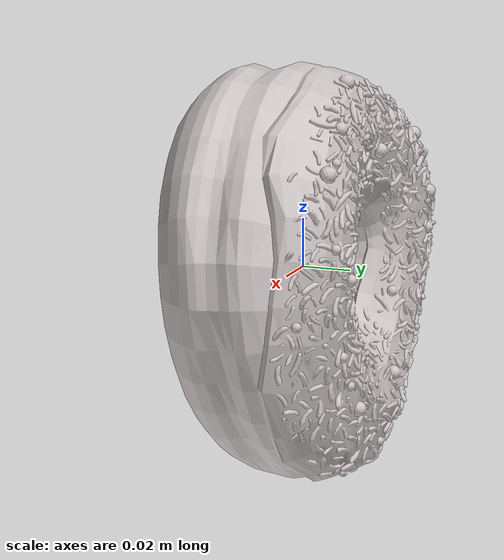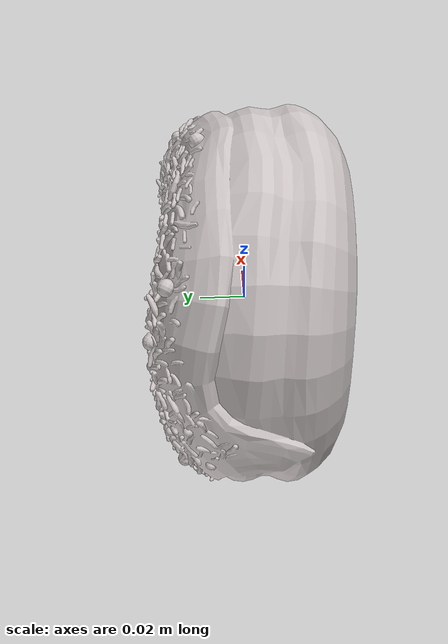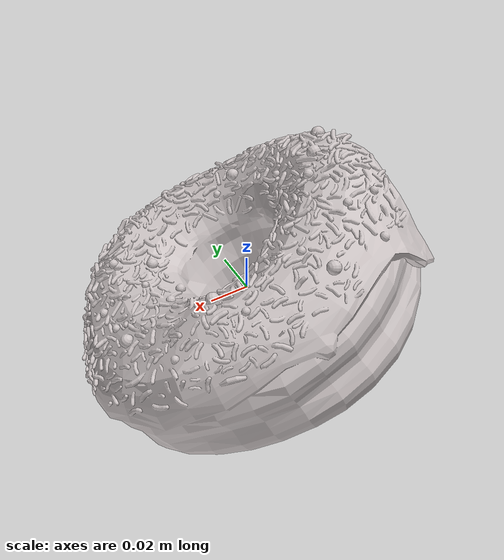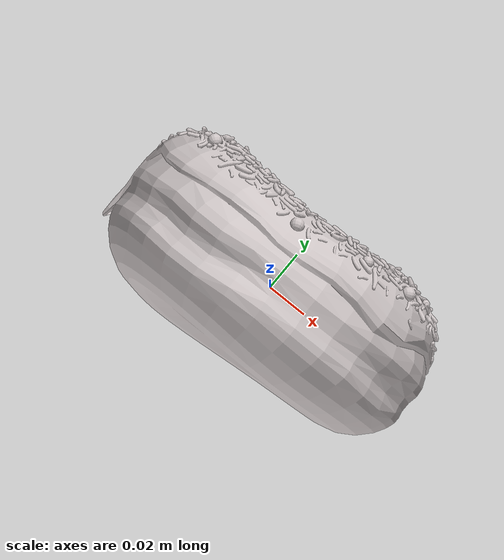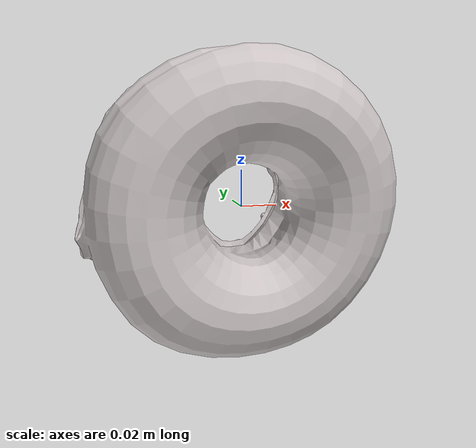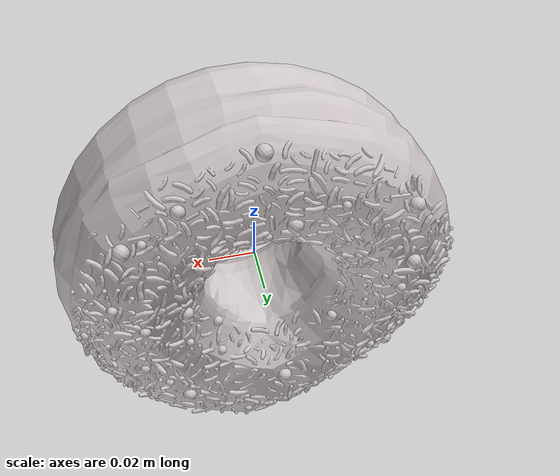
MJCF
<mujoco model="fork_5">
  <asset>
    <mesh file="visual/model_normalized_0.obj" name="model_normalized_0_vis" scale="0.16999999999999998 0.16999999999999998 0.16999999999999998" refquat="0.7071067811865471 0.7071067811865471 0.0 0.0"/>
    <mesh file="collision/model_normalized_collision_22.obj" name="model_normalized_collision_22._coll" scale="0.16999999999999998 0.16999999999999998 0.16999999999999998" refquat="0.7071067811865471 0.7071067811865471 0.0 0.0"/>
    <mesh file="collision/model_normalized_collision_23.obj" name="model_normalized_collision_23._coll" scale="0.16999999999999998 0.16999999999999998 0.16999999999999998" refquat="0.7071067811865471 0.7071067811865471 0.0 0.0"/>
    <mesh file="collision/model_normalized_collision_21.obj" name="model_normalized_collision_21._coll" scale="0.16999999999999998 0.16999999999999998 0.16999999999999998" refquat="0.7071067811865471 0.7071067811865471 0.0 0.0"/>
    <mesh file="collision/model_normalized_collision_20.obj" name="model_normalized_collision_20._coll" scale="0.16999999999999998 0.16999999999999998 0.16999999999999998" refquat="0.7071067811865471 0.7071067811865471 0.0 0.0"/>
    <mesh file="collision/model_normalized_collision_24.obj" name="model_normalized_collision_24._coll" scale="0.16999999999999998 0.16999999999999998 0.16999999999999998" refquat="0.7071067811865471 0.7071067811865471 0.0 0.0"/>
    <mesh file="collision/model_normalized_collision_30.obj" name="model_normalized_collision_30._coll" scale="0.16999999999999998 0.16999999999999998 0.16999999999999998" refquat="0.7071067811865471 0.7071067811865471 0.0 0.0"/>
    <mesh file="collision/model_normalized_collision_18.obj" name="model_normalized_collision_18._coll" scale="0.16999999999999998 0.16999999999999998 0.16999999999999998" refquat="0.7071067811865471 0.7071067811865471 0.0 0.0"/>
    <mesh file="collision/model_normalized_collision_19.obj" name="model_normalized_collision_19._coll" scale="0.16999999999999998 0.16999999999999998 0.16999999999999998" refquat="0.7071067811865471 0.7071067811865471 0.0 0.0"/>
    <mesh file="collision/model_normalized_collision_31.obj" name="model_normalized_collision_31._coll" scale="0.16999999999999998 0.16999999999999998 0.16999999999999998" refquat="0.7071067811865471 0.7071067811865471 0.0 0.0"/>
    <mesh file="collision/model_normalized_collision_25.obj" name="model_normalized_collision_25._coll" scale="0.16999999999999998 0.16999999999999998 0.16999999999999998" refquat="0.7071067811865471 0.7071067811865471 0.0 0.0"/>
    <mesh file="collision/model_normalized_collision_27.obj" name="model_normalized_collision_27._coll" scale="0.16999999999999998 0.16999999999999998 0.16999999999999998" refquat="0.7071067811865471 0.7071067811865471 0.0 0.0"/>
    <mesh file="collision/model_normalized_collision_26.obj" name="model_normalized_collision_26._coll" scale="0.16999999999999998 0.16999999999999998 0.16999999999999998" refquat="0.7071067811865471 0.7071067811865471 0.0 0.0"/>
    <mesh file="collision/model_normalized_collision_9.obj" name="model_normalized_collision_9._coll" scale="0.16999999999999998 0.16999999999999998 0.16999999999999998" refquat="0.7071067811865471 0.7071067811865471 0.0 0.0"/>
    <mesh file="collision/model_normalized_collision_8.obj" name="model_normalized_collision_8._coll" scale="0.16999999999999998 0.16999999999999998 0.16999999999999998" refquat="0.7071067811865471 0.7071067811865471 0.0 0.0"/>
    <mesh file="collision/model_normalized_collision_6.obj" name="model_normalized_collision_6._coll" scale="0.16999999999999998 0.16999999999999998 0.16999999999999998" refquat="0.7071067811865471 0.7071067811865471 0.0 0.0"/>
    <mesh file="collision/model_normalized_collision_7.obj" name="model_normalized_collision_7._coll" scale="0.16999999999999998 0.16999999999999998 0.16999999999999998" refquat="0.7071067811865471 0.7071067811865471 0.0 0.0"/>
    <mesh file="collision/model_normalized_collision_5.obj" name="model_normalized_collision_5._coll" scale="0.16999999999999998 0.16999999999999998 0.16999999999999998" refquat="0.7071067811865471 0.7071067811865471 0.0 0.0"/>
    <mesh file="collision/model_normalized_collision_4.obj" name="model_normalized_collision_4._coll" scale="0.16999999999999998 0.16999999999999998 0.16999999999999998" refquat="0.7071067811865471 0.7071067811865471 0.0 0.0"/>
    <mesh file="collision/model_normalized_collision_0.obj" name="model_normalized_collision_0._coll" scale="0.16999999999999998 0.16999999999999998 0.16999999999999998" refquat="0.7071067811865471 0.7071067811865471 0.0 0.0"/>
    <mesh file="collision/model_normalized_collision_1.obj" name="model_normalized_collision_1._coll" scale="0.16999999999999998 0.16999999999999998 0.16999999999999998" refquat="0.7071067811865471 0.7071067811865471 0.0 0.0"/>
    <mesh file="collision/model_normalized_collision_3.obj" name="model_normalized_collision_3._coll" scale="0.16999999999999998 0.16999999999999998 0.16999999999999998" refquat="0.7071067811865471 0.7071067811865471 0.0 0.0"/>
    <mesh file="collision/model_normalized_collision_2.obj" name="model_normalized_collision_2._coll" scale="0.16999999999999998 0.16999999999999998 0.16999999999999998" refquat="0.7071067811865471 0.7071067811865471 0.0 0.0"/>
    <mesh file="collision/model_normalized_collision_17.obj" name="model_normalized_collision_17._coll" scale="0.16999999999999998 0.16999999999999998 0.16999999999999998" refquat="0.7071067811865471 0.7071067811865471 0.0 0.0"/>
    <mesh file="collision/model_normalized_collision_16.obj" name="model_normalized_collision_16._coll" scale="0.16999999999999998 0.16999999999999998 0.16999999999999998" refquat="0.7071067811865471 0.7071067811865471 0.0 0.0"/>
    <mesh file="collision/model_normalized_collision_28.obj" name="model_normalized_collision_28._coll" scale="0.16999999999999998 0.16999999999999998 0.16999999999999998" refquat="0.7071067811865471 0.7071067811865471 0.0 0.0"/>
    <mesh file="collision/model_normalized_collision_14.obj" name="model_normalized_collision_14._coll" scale="0.16999999999999998 0.16999999999999998 0.16999999999999998" refquat="0.7071067811865471 0.7071067811865471 0.0 0.0"/>
    <mesh file="collision/model_normalized_collision_15.obj" name="model_normalized_collision_15._coll" scale="0.16999999999999998 0.16999999999999998 0.16999999999999998" refquat="0.7071067811865471 0.7071067811865471 0.0 0.0"/>
    <mesh file="collision/model_normalized_collision_29.obj" name="model_normalized_collision_29._coll" scale="0.16999999999999998 0.16999999999999998 0.16999999999999998" refquat="0.7071067811865471 0.7071067811865471 0.0 0.0"/>
    <mesh file="collision/model_normalized_collision_11.obj" name="model_normalized_collision_11._coll" scale="0.16999999999999998 0.16999999999999998 0.16999999999999998" refquat="0.7071067811865471 0.7071067811865471 0.0 0.0"/>
    <mesh file="collision/model_normalized_collision_10.obj" name="model_normalized_collision_10._coll" scale="0.16999999999999998 0.16999999999999998 0.16999999999999998" refquat="0.7071067811865471 0.7071067811865471 0.0 0.0"/>
    <mesh file="collision/model_normalized_collision_12.obj" name="model_normalized_collision_12._coll" scale="0.16999999999999998 0.16999999999999998 0.16999999999999998" refquat="0.7071067811865471 0.7071067811865471 0.0 0.0"/>
    <mesh file="collision/model_normalized_collision_13.obj" name="model_normalized_collision_13._coll" scale="0.16999999999999998 0.16999999999999998 0.16999999999999998" refquat="0.7071067811865471 0.7071067811865471 0.0 0.0"/>
    <material name="Scene_-_Root.011" specular="0.5" shininess="0.587641447" rgba="0.810370 0.778284 0.778284 1.0"/>
  </asset>
  <default>
    <default class="region">
      <geom group="1" conaffinity="0" contype="0" rgba="0 1 0 0"/>
    </default>
  </default>
  <worldbody>
    <body>
      <body name="object">
        <geom solimp="0.998 0.998 0.001" solref="0.001 1" density="100" friction="4.95 0.3 0.1" type="mesh" mesh="model_normalized_0_vis" conaffinity="0" contype="0" group="1" material="Scene_-_Root.011"/>
        <geom solimp="0.998 0.998 0.001" solref="0.001 1" density="100" friction="4.95 0.3 0.1" type="mesh" mesh="model_normalized_collision_22._coll" group="0" rgba="0.8 0.8 0.8 0.0"/>
        <geom solimp="0.998 0.998 0.001" solref="0.001 1" density="100" friction="4.95 0.3 0.1" type="mesh" mesh="model_normalized_collision_23._coll" group="0" rgba="0.8 0.8 0.8 0.0"/>
        <geom solimp="0.998 0.998 0.001" solref="0.001 1" density="100" friction="4.95 0.3 0.1" type="mesh" mesh="model_normalized_collision_21._coll" group="0" rgba="0.8 0.8 0.8 0.0"/>
        <geom solimp="0.998 0.998 0.001" solref="0.001 1" density="100" friction="4.95 0.3 0.1" type="mesh" mesh="model_normalized_collision_20._coll" group="0" rgba="0.8 0.8 0.8 0.0"/>
        <geom solimp="0.998 0.998 0.001" solref="0.001 1" density="100" friction="4.95 0.3 0.1" type="mesh" mesh="model_normalized_collision_24._coll" group="0" rgba="0.8 0.8 0.8 0.0"/>
        <geom solimp="0.998 0.998 0.001" solref="0.001 1" density="100" friction="4.95 0.3 0.1" type="mesh" mesh="model_normalized_collision_30._coll" group="0" rgba="0.8 0.8 0.8 0.0"/>
        <geom solimp="0.998 0.998 0.001" solref="0.001 1" density="100" friction="4.95 0.3 0.1" type="mesh" mesh="model_normalized_collision_18._coll" group="0" rgba="0.8 0.8 0.8 0.0"/>
        <geom solimp="0.998 0.998 0.001" solref="0.001 1" density="100" friction="4.95 0.3 0.1" type="mesh" mesh="model_normalized_collision_19._coll" group="0" rgba="0.8 0.8 0.8 0.0"/>
        <geom solimp="0.998 0.998 0.001" solref="0.001 1" density="100" friction="4.95 0.3 0.1" type="mesh" mesh="model_normalized_collision_31._coll" group="0" rgba="0.8 0.8 0.8 0.0"/>
        <geom solimp="0.998 0.998 0.001" solref="0.001 1" density="100" friction="4.95 0.3 0.1" type="mesh" mesh="model_normalized_collision_25._coll" group="0" rgba="0.8 0.8 0.8 0.0"/>
        <geom solimp="0.998 0.998 0.001" solref="0.001 1" density="100" friction="4.95 0.3 0.1" type="mesh" mesh="model_normalized_collision_27._coll" group="0" rgba="0.8 0.8 0.8 0.0"/>
        <geom solimp="0.998 0.998 0.001" solref="0.001 1" density="100" friction="4.95 0.3 0.1" type="mesh" mesh="model_normalized_collision_26._coll" group="0" rgba="0.8 0.8 0.8 0.0"/>
        <geom solimp="0.998 0.998 0.001" solref="0.001 1" density="100" friction="4.95 0.3 0.1" type="mesh" mesh="model_normalized_collision_9._coll" group="0" rgba="0.8 0.8 0.8 0.0"/>
        <geom solimp="0.998 0.998 0.001" solref="0.001 1" density="100" friction="4.95 0.3 0.1" type="mesh" mesh="model_normalized_collision_8._coll" group="0" rgba="0.8 0.8 0.8 0.0"/>
        <geom solimp="0.998 0.998 0.001" solref="0.001 1" density="100" friction="4.95 0.3 0.1" type="mesh" mesh="model_normalized_collision_6._coll" group="0" rgba="0.8 0.8 0.8 0.0"/>
        <geom solimp="0.998 0.998 0.001" solref="0.001 1" density="100" friction="4.95 0.3 0.1" type="mesh" mesh="model_normalized_collision_7._coll" group="0" rgba="0.8 0.8 0.8 0.0"/>
        <geom solimp="0.998 0.998 0.001" solref="0.001 1" density="100" friction="4.95 0.3 0.1" type="mesh" mesh="model_normalized_collision_5._coll" group="0" rgba="0.8 0.8 0.8 0.0"/>
        <geom solimp="0.998 0.998 0.001" solref="0.001 1" density="100" friction="4.95 0.3 0.1" type="mesh" mesh="model_normalized_collision_4._coll" group="0" rgba="0.8 0.8 0.8 0.0"/>
        <geom solimp="0.998 0.998 0.001" solref="0.001 1" density="100" friction="4.95 0.3 0.1" type="mesh" mesh="model_normalized_collision_0._coll" group="0" rgba="0.8 0.8 0.8 0.0"/>
        <geom solimp="0.998 0.998 0.001" solref="0.001 1" density="100" friction="4.95 0.3 0.1" type="mesh" mesh="model_normalized_collision_1._coll" group="0" rgba="0.8 0.8 0.8 0.0"/>
        <geom solimp="0.998 0.998 0.001" solref="0.001 1" density="100" friction="4.95 0.3 0.1" type="mesh" mesh="model_normalized_collision_3._coll" group="0" rgba="0.8 0.8 0.8 0.0"/>
        <geom solimp="0.998 0.998 0.001" solref="0.001 1" density="100" friction="4.95 0.3 0.1" type="mesh" mesh="model_normalized_collision_2._coll" group="0" rgba="0.8 0.8 0.8 0.0"/>
        <geom solimp="0.998 0.998 0.001" solref="0.001 1" density="100" friction="4.95 0.3 0.1" type="mesh" mesh="model_normalized_collision_17._coll" group="0" rgba="0.8 0.8 0.8 0.0"/>
        <geom solimp="0.998 0.998 0.001" solref="0.001 1" density="100" friction="4.95 0.3 0.1" type="mesh" mesh="model_normalized_collision_16._coll" group="0" rgba="0.8 0.8 0.8 0.0"/>
        <geom solimp="0.998 0.998 0.001" solref="0.001 1" density="100" friction="4.95 0.3 0.1" type="mesh" mesh="model_normalized_collision_28._coll" group="0" rgba="0.8 0.8 0.8 0.0"/>
        <geom solimp="0.998 0.998 0.001" solref="0.001 1" density="100" friction="4.95 0.3 0.1" type="mesh" mesh="model_normalized_collision_14._coll" group="0" rgba="0.8 0.8 0.8 0.0"/>
        <geom solimp="0.998 0.998 0.001" solref="0.001 1" density="100" friction="4.95 0.3 0.1" type="mesh" mesh="model_normalized_collision_15._coll" group="0" rgba="0.8 0.8 0.8 0.0"/>
        <geom solimp="0.998 0.998 0.001" solref="0.001 1" density="100" friction="4.95 0.3 0.1" type="mesh" mesh="model_normalized_collision_29._coll" group="0" rgba="0.8 0.8 0.8 0.0"/>
        <geom solimp="0.998 0.998 0.001" solref="0.001 1" density="100" friction="4.95 0.3 0.1" type="mesh" mesh="model_normalized_collision_11._coll" group="0" rgba="0.8 0.8 0.8 0.0"/>
        <geom solimp="0.998 0.998 0.001" solref="0.001 1" density="100" friction="4.95 0.3 0.1" type="mesh" mesh="model_normalized_collision_10._coll" group="0" rgba="0.8 0.8 0.8 0.0"/>
        <geom solimp="0.998 0.998 0.001" solref="0.001 1" density="100" friction="4.95 0.3 0.1" type="mesh" mesh="model_normalized_collision_12._coll" group="0" rgba="0.8 0.8 0.8 0.0"/>
        <geom solimp="0.998 0.998 0.001" solref="0.001 1" density="100" friction="4.95 0.3 0.1" type="mesh" mesh="model_normalized_collision_13._coll" group="0" rgba="0.8 0.8 0.8 0.0"/>
        <geom class="region" name="reg_bbox" type="box" pos="1.3345000000053452e-07 0.00029516504999999775 -0.00010090434999999987" size="0.0137654151 0.0847309631 0.0032652945499999997"/>
      </body>
    </body>
  </worldbody>
</mujoco>
